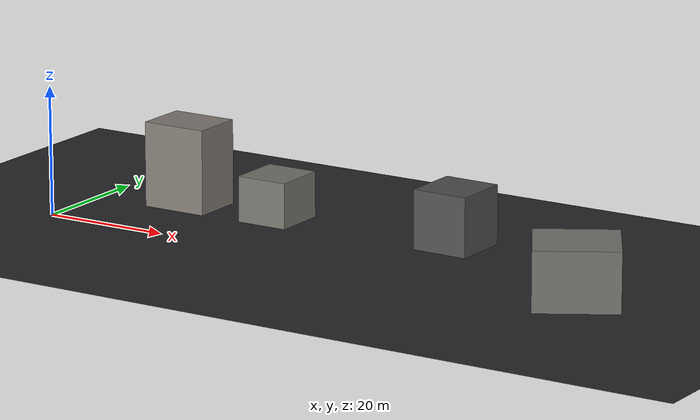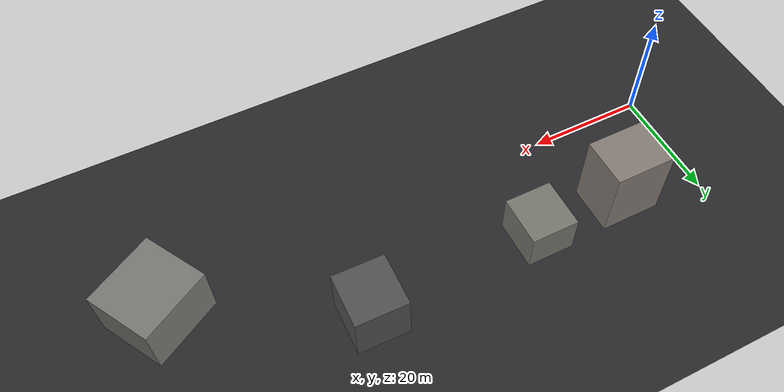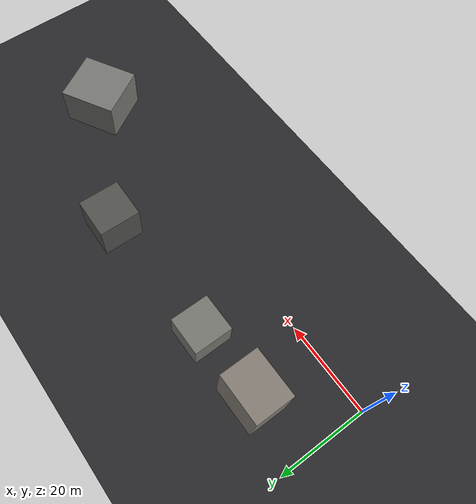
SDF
<sdf version="1.7">
 <world name="urban_course">
  <model name="ground">
   <static>true</static>
   <pose>67.5 -85.5 0 0 0 0</pose>
   <link name="l">
    <collision name="c"><geometry><plane><normal>0 0 1</normal><size>195 231</size></plane></geometry></collision>
    <visual name="v">
     <geometry><plane><normal>0 0 1</normal><size>195 231</size></plane></geometry>
     <material><ambient>0.16 0.16 0.17 1</ambient><diffuse>0.16 0.16 0.17 1</diffuse></material>
    </visual>
   </link>
  </model>
  <model name="bldg_02">
   <static>true</static>
   <pose>30.097 16.189 3.547 0 0 0.0000</pose>
   <link name="l">
    <collision name="c"><geometry><box><size>8.191 8.562 7.094</size></box></geometry></collision>
    <visual name="v">
     <geometry><box><size>8.191 8.562 7.094</size></box></geometry>
     <material><ambient>0.47 0.47 0.44 1</ambient><diffuse>0.47 0.47 0.44 1</diffuse></material>
    </visual>
   </link>
  </model>
  <model name="bldg_08">
   <static>true</static>
   <pose>14.266 15.967 6.609 0 0 0.0000</pose>
   <link name="l">
    <collision name="c"><geometry><box><size>10.407 8.397 13.218</size></box></geometry></collision>
    <visual name="v">
     <geometry><box><size>10.407 8.397 13.218</size></box></geometry>
     <material><ambient>0.52 0.49 0.46 1</ambient><diffuse>0.52 0.49 0.46 1</diffuse></material>
    </visual>
   </link>
  </model>
  <model name="bldg_13">
   <static>true</static>
   <pose>60.666 17.540 4.582 0 0 -0.0205</pose>
   <link name="l">
    <collision name="c"><geometry><box><size>8.841 9.101 9.164</size></box></geometry></collision>
    <visual name="v">
     <geometry><box><size>8.841 9.101 9.164</size></box></geometry>
     <material><ambient>0.32 0.32 0.31 1</ambient><diffuse>0.32 0.32 0.31 1</diffuse></material>
    </visual>
   </link>
  </model>
  <model name="bldg_17">
   <static>true</static>
   <pose>89.714 2.231 4.549 0 0 -1.0453</pose>
   <link name="l">
    <collision name="c"><geometry><box><size>11.668 12.611 9.099</size></box></geometry></collision>
    <visual name="v">
     <geometry><box><size>11.668 12.611 9.099</size></box></geometry>
     <material><ambient>0.47 0.47 0.45 1</ambient><diffuse>0.47 0.47 0.45 1</diffuse></material>
    </visual>
   </link>
  </model>
 </world>
</sdf>
